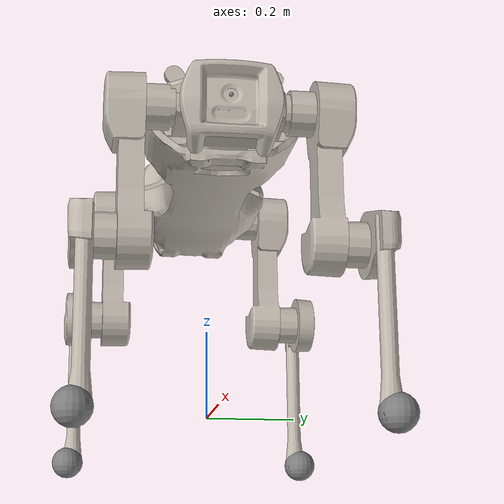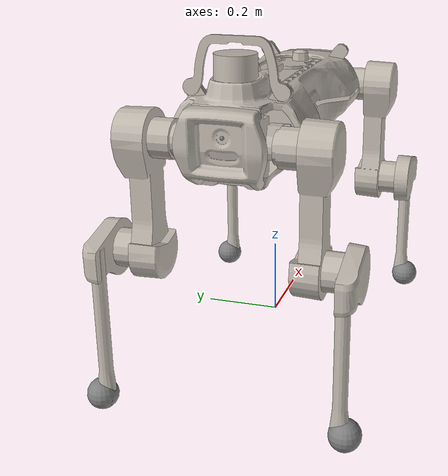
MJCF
<mujoco model="anymal_d">
  <compiler angle="radian" meshdir="assets" texturedir="assets" autolimits="true"/>

  <option cone="elliptic" impratio="100"/>

  <default>
    <default class="anymal_d">
      <geom friction="0.4" margin="0.001" condim="1" mass="0"/>
      <joint damping="0.1" armature="0.01" frictionloss="0.2"/>
      <motor ctrlrange="-80 80"/>
      <default class="visual">
        <geom type="mesh" contype="0" conaffinity="0" group="2" density="0"/>
      </default>
      <default class="collision">
        <geom group="3"/>
        <default class="foot">
          <geom type="sphere" priority="1" condim="6"
            friction="1.0 0.02 0.01"/>
        </default>
      </default>
    </default>
  </default>

  <asset>
    <texture type="2d" name="tex_base" file="base.png"/>
    <texture type="2d" name="tex_top_shell" file="top_shell.png"/>
    <texture type="2d" name="tex_bottom_shell" file="bottom_shell.png"/>
    <texture type="2d" name="tex_face_shell" file="face_shell.png"/>
    <texture type="2d" name="tex_battery" file="battery.png"/>
    <texture type="2d" name="tex_docking_socket" file="docking_socket.png"/>
    <texture type="2d" name="tex_lidar" file="lidar.png"/>
    <texture type="2d" name="tex_lidar_guard" file="lidar_guard.png"/>
    <texture type="2d" name="tex_drive" file="drive.png"/>
    <texture type="2d" name="tex_hip" file="hip.png"/>
    <texture type="2d" name="tex_thigh" file="thigh.png"/>
    <texture type="2d" name="tex_shank" file="shank.png"/>
    <texture type="2d" name="tex_foot" file="foot.png"/>

    <material name="mat_base" texture="tex_base"/>
    <material name="mat_top_shell" texture="tex_top_shell"/>
    <material name="mat_bottom_shell" texture="tex_bottom_shell"/>
    <material name="mat_face_shell" texture="tex_face_shell"/>
    <material name="mat_battery" texture="tex_battery"/>
    <material name="mat_docking_socket" texture="tex_docking_socket"/>
    <material name="mat_lidar" texture="tex_lidar"/>
    <material name="mat_lidar_guard" texture="tex_lidar_guard"/>
    <material name="mat_drive" texture="tex_drive"/>
    <material name="mat_hip" texture="tex_hip"/>
    <material name="mat_thigh" texture="tex_thigh"/>
    <material name="mat_shank" texture="tex_shank"/>
    <material name="mat_foot" texture="tex_foot"/>

    <mesh file="base.obj"/>
    <mesh file="top_shell.obj"/>
    <mesh file="bottom_shell.obj"/>
    <mesh file="face_shell.obj"/>
    <mesh file="battery.obj"/>
    <mesh file="docking_socket.obj"/>
    <mesh file="lidar.obj"/>
    <mesh file="lidar_guard.obj"/>
    <mesh file="drive.obj"/>
    <mesh file="hip.obj"/>
    <mesh file="thigh.obj"/>
    <mesh file="shank_l.obj"/>
    <mesh file="shank_r.obj"/>
    <mesh file="foot.obj"/>
  </asset>

  <worldbody>
    <light name="spotlight" mode="targetbodycom" target="base" pos="0 -1 2" cutoff="30"/>
    <body name="base" pos="0 0 0.594" childclass="anymal_d">
      <freejoint/>
      <inertial mass="26.36305" pos="-0.016448 0.000682 -0.011954"
        quat="0.713650 -0.005053 -0.700480 0.002173"
        diaginertia="1.534412 1.467882 0.251308"/>
      <!-- Base visual -->
      <geom mesh="base" material="mat_base" class="visual"/>
      <geom mesh="top_shell" material="mat_top_shell" class="visual"/>
      <geom mesh="bottom_shell" material="mat_bottom_shell" class="visual"/>
      <geom mesh="face_shell" pos="0.4087 0 0.0205" material="mat_face_shell" class="visual"/>
      <geom mesh="face_shell" pos="-0.4087 0 0.0205" quat="0 0 0 1" material="mat_face_shell" class="visual"/>
      <geom mesh="battery" material="mat_battery" class="visual"/>
      <geom mesh="docking_socket" pos="0.26132 0 -0.06205" material="mat_docking_socket" class="visual"/>
      <geom mesh="lidar" pos="-0.31 0 0.1585" quat="0 0 0 1" material="mat_lidar" class="visual"/>
      <geom mesh="lidar_guard" pos="-0.31 0 0.1585" quat="0 0 0 1" material="mat_lidar_guard" class="visual"/>
      <geom mesh="drive" pos="0.304 0.109 0" material="mat_foot" class="visual"/>
      <geom mesh="drive" pos="0.304 -0.109 0" material="mat_foot" class="visual"/>
      <geom mesh="drive" pos="-0.304 0.109 0" quat="0 0 0 -1" material="mat_foot" class="visual"/>
      <geom mesh="drive" pos="-0.304 -0.109 0" quat="0 0 0 -1" material="mat_foot" class="visual"/>
      <!-- Base collision -->
      <geom size="0.447 0.08075 0.128" pos="0 0 0.016" type="box" class="collision"/>
      <geom size="0.089 0.0741" pos="0.2353 0.08075 0" quat="0.707107 0 0.707107 0" type="cylinder" class="collision"/>
      <geom size="0.089 0.0741" pos="0.2353 -0.08075 0" quat="0.707107 0 0.707107 0" type="cylinder" class="collision"/>
      <geom size="0.089 0.0741" pos="-0.2353 0.08075 0" quat="0.707107 0 0.707107 0" type="cylinder" class="collision"/>
      <geom size="0.089 0.0741" pos="-0.2353 -0.08075 0" quat="0.707107 0 0.707107 0" type="cylinder" class="collision"/>
      <geom size="0.07 0.06775" pos="-0.31 0 0.1585" quat="0 0 0 1" type="cylinder" class="collision"/>
      <site name="imu" pos="0 0 0"/>
      <!-- Camera frames -->
      <site name="depth_camera_front_lower_camera" pos="0.368420 -0.025 -0.060010" quat="0.866025 0 0.5 0"/>
      <site name="depth_camera_front_lower_depth_optical_frame" pos="0.368420 -0.025 -0.060010" quat="0.183013 0.683013 0.683013 0.183013"/>
      <site name="depth_camera_front_upper_camera" pos="0.398770 -0.025 -0.020460" quat="0.991445 0 0.130526 0"/>
      <site name="depth_camera_front_upper_depth_optical_frame" pos="0.398770 -0.025 -0.020460" quat="0.430459 0.560986 0.560986 0.430459"/>
      <site name="depth_camera_rear_lower_camera" pos="-0.368420 0.025 -0.060010" quat="0 -0.5 0 0.866025"/>
      <site name="depth_camera_rear_lower_depth_optical_frame" pos="-0.368420 0.025 -0.060010" quat="0.183013 0.683013 -0.683013 -0.183013"/>
      <site name="depth_camera_rear_upper_camera" pos="-0.398770 0.025 -0.020460" quat="0 -0.130526 0 0.991445"/>
      <site name="depth_camera_rear_upper_depth_optical_frame" pos="-0.398770 0.025 -0.020460" quat="0.430459 0.560986 -0.560986 -0.430459"/>
      <site name="depth_camera_left_camera" pos="-0.025 0.0923 0.0123" quat="0.660141 -0.253404 0.253404 0.660141"/>
      <site name="depth_camera_left_depth_optical_frame" pos="-0.025 0.0923 0.0123" quat="0.406737 -0.913545 0 0"/>
      <site name="depth_camera_right_camera" pos="0.025 -0.0923 0.0123" quat="0.660141 0.253404 0.253404 -0.660141"/>
      <site name="depth_camera_right_depth_optical_frame" pos="0.025 -0.0923 0.0123" quat="0 0 0.913545 -0.406737"/>
      <site name="wide_angle_camera_front_camera" pos="0.4087 0 0.0205"/>
      <site name="wide_angle_camera_front_optical" pos="0.40449 0 0.0205" quat="0.5 -0.5 0.5 -0.5"/>
      <camera name="wide_angle_front" pos="0.40449 0 0.0205" quat="0.500000 0.500000 -0.500000 -0.500000" fovy="120"/>
      <site name="wide_angle_camera_rear_camera" pos="-0.4087 0 0.0205" quat="0 0 0 1"/>
      <site name="wide_angle_camera_rear_optical" pos="-0.40449 0 0.0205" quat="0.5 -0.5 -0.5 0.5"/>
      <camera name="wide_angle_rear" pos="-0.40449 0 0.0205" quat="0.500000 0.500000 0.500000 0.500000" fovy="120"/>
      <camera name="depth_front_upper" pos="0.398770 -0.025 -0.020460" quat="-0.560986 0.430459 0.430459 -0.560986" fovy="87"/>
      <camera name="depth_front_lower" pos="0.368420 -0.025 -0.060010" quat="-0.683013 0.183013 0.183013 -0.683013" fovy="87"/>
      <camera name="depth_rear_upper" pos="-0.398770 0.025 -0.020460" quat="-0.560986 0.430459 -0.430459 0.560986" fovy="87"/>
      <camera name="depth_rear_lower" pos="-0.368420 0.025 -0.060010" quat="-0.683013 0.183013 -0.183013 0.683013" fovy="87"/>
      <camera name="depth_left" pos="-0.025 0.0923 0.0123" quat="0.913545 0.406737 0.000000 0.000000" fovy="87"/>
      <camera name="depth_right" pos="0.025 -0.0923 0.0123" quat="0.000000 0.000000 -0.406737 -0.913545" fovy="87"/>
      <!-- LF leg -->
      <body name="LF_HIP" pos="0.304 0.109 0">
        <inertial pos="0.035047 -0.00122677 0" quat="0.502484 0.502593 0.497424 0.497473" mass="0.36586" diaginertia="0.000558279 0.000443321 0.00023849"/>
        <joint name="LF_HAA" axis="1 0 0" range="-0.785398 0.610865"/>
        <geom mesh="hip" material="mat_hip" class="visual"/>
        <body name="LF_THIGH" pos="0.069 0.006 0" quat="0.707107 0 0 -0.707107">
          <inertial pos="-0.0669974 0.110833 -0.121809" quat="0.847424 0.355343 -0.0696405 0.388271" mass="5.1322" diaginertia="0.141486 0.135483 0.0206892"/>
          <joint name="LF_HFE" axis="-1 0 0" range="-9.42478 9.42478"/>
          <geom mesh="drive" material="mat_drive" class="visual"/>
          <geom mesh="thigh" quat="0.707107 0 0 0.707107" material="mat_thigh" class="visual"/>
          <geom mesh="drive" pos="-0.1805 0 -0.285" quat="0 0 0 1" material="mat_foot" class="visual"/>
          <geom size="0.05375 0.0595" pos="-0.0595 0 0" quat="0.707107 0 0.707107 0" type="cylinder" class="collision"/>
          <geom size="0.07 0.041565" pos="-0.105195 0 0" quat="0.5 0.5 0.5 0.5" type="cylinder" class="collision"/>
          <geom size="0.0465 0.0315 0.1425" pos="-0.09513 0 -0.1425" quat="0.707107 0 0 0.707107" type="box" class="collision"/>
          <geom size="0.07 0.041565" pos="-0.085065 0 -0.285" quat="0.5 0.5 0.5 0.5" type="cylinder" class="collision"/>
          <geom size="0.05375 0.0595" pos="-0.121 0 -0.285" quat="0 -0.707107 0 0.707107" type="cylinder" class="collision"/>
          <body name="LF_SHANK" pos="-0.1805 0 -0.285" quat="0 0 0 1">
            <inertial pos="0.0219778 -0.032671 -0.0911529" quat="0.80705 -0.129258 0.0892927 0.569201" mass="0.79598" diaginertia="0.0192772 0.0192542 0.00249606"/>
            <joint name="LF_KFE" axis="1 0 0" range="-9.42478 9.42478"/>
            <geom mesh="shank_l" quat="0.707107 0 0 -0.707107" material="mat_shank" class="visual"/>
            <geom mesh="foot" pos="0.02225 -0.1 -0.39246" quat="0.707107 0 0 -0.707107" material="mat_foot" class="visual"/>
            <geom size="0.071 0.02866" quat="0.5 0.5 -0.5 -0.5" type="cylinder" class="collision"/>
            <geom size="0.066415 0.04151 0.02866" pos="0 -0.066415 0" quat="0.5 0.5 -0.5 -0.5" type="box" class="collision"/>
            <geom size="0.0175 0.19786" pos="0.00535885 -0.1 -0.164217" quat="0.707107 0 0 -0.707107" type="cylinder" class="collision"/>
            <geom name="LF" class="foot" size="0.031455" pos="0.0141088 -0.1 -0.362077"/>
            <site name="LF_foot_site" pos="0.0141088 -0.1 -0.362077" size="0.04"/>
          </body>
        </body>
      </body>
      <!-- RF leg -->
      <body name="RF_HIP" pos="0.304 -0.109 0">
        <inertial pos="0.035047 0.00122677 0" quat="0.497473 0.497424 0.502593 0.502484" mass="0.36586" diaginertia="0.000558279 0.000443321 0.00023849"/>
        <joint name="RF_HAA" axis="1 0 0" range="-0.610865 0.785398"/>
        <geom mesh="hip" quat="0 -1 0 0" material="mat_foot" class="visual"/>
        <body name="RF_THIGH" pos="0.069 -0.006 0" quat="0.707107 0 0 0.707107">
          <inertial pos="-0.0669974 0.0715537 -0.121809" quat="0.877206 0.44579 0.0354025 0.17472" mass="5.1322" diaginertia="0.18131 0.150268 0.0396147"/>
          <joint name="RF_HFE" axis="1 0 0" range="-9.42478 9.42478"/>
          <geom mesh="drive" material="mat_drive" class="visual"/>
          <geom mesh="thigh" quat="-0.707107 0 0 -0.707107" material="mat_thigh" class="visual"/>
          <geom mesh="drive" pos="-0.1805 0 -0.285" quat="0 0 0 -1" material="mat_foot" class="visual"/>
          <geom size="0.05375 0.0595" pos="-0.0595 0 0" quat="0.707107 0 0.707107 0" type="cylinder" class="collision"/>
          <geom size="0.07 0.041565" pos="-0.105195 0 0" quat="0.5 0.5 -0.5 -0.5" type="cylinder" class="collision"/>
          <geom size="0.0465 0.0315 0.1425" pos="-0.09513 0 -0.1425" quat="0.707107 0 0 -0.707107" type="box" class="collision"/>
          <geom size="0.07 0.041565" pos="-0.085065 0 -0.285" quat="0.5 0.5 -0.5 -0.5" type="cylinder" class="collision"/>
          <geom size="0.05375 0.0595" pos="-0.121 0 -0.285" quat="0 0.707107 0 -0.707107" type="cylinder" class="collision"/>
          <body name="RF_SHANK" pos="-0.1805 0 -0.285" quat="0 0 0 -1">
            <inertial pos="0.0219778 0.032671 -0.0911529" quat="0.569201 0.0892927 -0.129258 0.80705" mass="0.79598" diaginertia="0.0192772 0.0192542 0.00249606"/>
            <joint name="RF_KFE" axis="-1 0 0" range="-9.42478 9.42478"/>
            <geom mesh="shank_r" quat="0.707107 0 0 0.707107" material="mat_shank" class="visual"/>
            <geom mesh="foot" pos="0.02225 0.1 -0.39246" quat="0.707107 0 0 -0.707107" material="mat_foot" class="visual"/>
            <geom size="0.071 0.02866" quat="0.5 0.5 0.5 0.5" type="cylinder" class="collision"/>
            <geom size="0.066415 0.04151 0.02866" pos="0 0.066415 0" quat="0.5 0.5 0.5 0.5" type="box" class="collision"/>
            <geom size="0.0175 0.19786" pos="0.00535885 0.1 -0.164217" quat="0.707107 0 0 0.707107" type="cylinder" class="collision"/>
            <geom name="RF" class="foot" size="0.031455" pos="0.0141088 0.1 -0.362077"/>
            <site name="RF_foot_site" pos="0.0141088 0.1 -0.362077" size="0.04"/>
          </body>
        </body>
      </body>
      <!-- LH leg -->
      <body name="LH_HIP" pos="-0.304 0.109 0" quat="0 0 0 -1">
        <inertial pos="-0.0346698 -0.00125957 0" quat="0.497686 0.497737 0.502224 0.502332" mass="0.36586" diaginertia="0.000567894 0.000452912 0.000238466"/>
        <joint name="LH_HAA" axis="-1 0 0" range="-0.785398 0.610865"/>
        <geom mesh="hip" quat="0 1 0 0" material="mat_foot" class="visual"/>
        <body name="LH_THIGH" pos="0.069 -0.006 0" quat="-0.707107 0 0 -0.707107">
          <inertial pos="-0.0668215 0.110833 -0.121809" quat="0.848941 0.356939 -0.0647204 0.384323" mass="5.1322" diaginertia="0.141716 0.135634 0.0205503"/>
          <joint name="LH_HFE" axis="-1 0 0" range="-9.42478 9.42478"/>
          <geom mesh="drive" material="mat_drive" class="visual"/>
          <geom mesh="thigh" quat="0.707107 0 0 0.707107" material="mat_thigh" class="visual"/>
          <geom mesh="drive" pos="-0.1805 0 -0.285" quat="0 0 0 1" material="mat_foot" class="visual"/>
          <geom size="0.05375 0.0595" pos="-0.0595 0 0" quat="0.707107 0 0.707107 0" type="cylinder" class="collision"/>
          <geom size="0.07 0.041565" pos="-0.105195 0 0" quat="0.5 0.5 0.5 0.5" type="cylinder" class="collision"/>
          <geom size="0.0465 0.0315 0.1425" pos="-0.09513 0 -0.1425" quat="0.707107 0 0 0.707107" type="box" class="collision"/>
          <geom size="0.07 0.041565" pos="-0.085065 0 -0.285" quat="0.5 0.5 0.5 0.5" type="cylinder" class="collision"/>
          <geom size="0.05375 0.0595" pos="-0.121 0 -0.285" quat="0 -0.707107 0 0.707107" type="cylinder" class="collision"/>
          <body name="LH_SHANK" pos="-0.1805 0 -0.285" quat="0 0 0 1">
            <inertial pos="-0.00540503 0.0417739 -0.0887313" quat="0.576666 0.0236612 -0.146695 0.803354" mass="0.79598" diaginertia="0.0186219 0.0179968 0.00220746"/>
            <joint name="LH_KFE" axis="1 0 0" range="-9.42478 9.42478"/>
            <geom mesh="shank_r" quat="-0.707107 0 0 -0.707107" material="mat_shank" class="visual"/>
            <geom mesh="foot" pos="0.02225 0.1 -0.39246" quat="0.707107 0 0 -0.707107" material="mat_foot" class="visual"/>
            <geom size="0.071 0.02866" quat="0.5 0.5 -0.5 -0.5" type="cylinder" class="collision"/>
            <geom size="0.066415 0.04151 0.02866" pos="0 0.066415 0" quat="0.5 0.5 -0.5 -0.5" type="box" class="collision"/>
            <geom size="0.0175 0.19786" pos="0.00535885 0.1 -0.164217" quat="0.707107 0 0 -0.707107" type="cylinder" class="collision"/>
            <geom name="LH" class="foot" size="0.031455" pos="0.0141088 0.1 -0.362077"/>
            <site name="LH_foot_site" pos="0.0141088 0.1 -0.362077" size="0.04"/>
          </body>
        </body>
      </body>
      <!-- RH leg -->
      <body name="RH_HIP" pos="-0.304 -0.109 0" quat="0 0 0 -1">
        <inertial pos="-0.0346698 0.00125957 0" quat="0.502332 0.502224 0.497737 0.497686" mass="0.36586" diaginertia="0.000567894 0.000452912 0.000238466"/>
        <joint name="RH_HAA" axis="-1 0 0" range="-0.610865 0.785398"/>
        <geom mesh="hip" quat="-1 0 0 0" material="mat_foot" class="visual"/>
        <body name="RH_THIGH" pos="0.069 0.006 0" quat="0.707107 0 0 -0.707107">
          <inertial pos="-0.0668215 0.0715537 -0.121809" quat="0.879005 0.444872 0.0396475 0.166936" mass="5.1322" diaginertia="0.180979 0.150741 0.0397139"/>
          <joint name="RH_HFE" axis="1 0 0" range="-9.42478 9.42478"/>
          <geom mesh="drive" material="mat_drive" class="visual"/>
          <geom mesh="thigh" quat="-0.707107 0 0 -0.707107" material="mat_thigh" class="visual"/>
          <geom mesh="drive" pos="-0.1805 0 -0.285" quat="0 0 0 -1" material="mat_foot" class="visual"/>
          <geom size="0.05375 0.0595" pos="-0.0595 0 0" quat="0.707107 0 0.707107 0" type="cylinder" class="collision"/>
          <geom size="0.07 0.041565" pos="-0.105195 0 0" quat="0.5 0.5 -0.5 -0.5" type="cylinder" class="collision"/>
          <geom size="0.0465 0.0315 0.1425" pos="-0.09513 0 -0.1425" quat="0.707107 0 0 -0.707107" type="box" class="collision"/>
          <geom size="0.07 0.041565" pos="-0.085065 0 -0.285" quat="0.5 0.5 -0.5 -0.5" type="cylinder" class="collision"/>
          <geom size="0.05375 0.0595" pos="-0.121 0 -0.285" quat="0 0.707107 0 -0.707107" type="cylinder" class="collision"/>
          <body name="RH_SHANK" pos="-0.1805 0 -0.285" quat="0 0 0 -1">
            <inertial pos="-0.00540503 -0.0417739 -0.0887313" quat="0.803354 -0.146695 0.0236612 0.576666" mass="0.79598" diaginertia="0.0186219 0.0179968 0.00220746"/>
            <joint name="RH_KFE" axis="-1 0 0" range="-9.42478 9.42478"/>
            <geom mesh="shank_l" quat="0.707107 0 0 -0.707107" material="mat_shank" class="visual"/>
            <geom mesh="foot" pos="0.02225 -0.1 -0.39246" quat="0.707107 0 0 -0.707107" material="mat_foot" class="visual"/>
            <geom size="0.071 0.02866" quat="0.5 0.5 0.5 0.5" type="cylinder" class="collision"/>
            <geom size="0.066415 0.04151 0.02866" pos="0 -0.066415 0" quat="0.5 0.5 0.5 0.5" type="box" class="collision"/>
            <geom size="0.0175 0.19786" pos="0.00535885 -0.1 -0.164217" quat="0.707107 0 0 0.707107" type="cylinder" class="collision"/>
            <geom name="RH" class="foot" size="0.031455" pos="0.0141088 -0.1 -0.362077"/>
            <site name="RH_foot_site" pos="0.0141088 -0.1 -0.362077" size="0.04"/>
          </body>
        </body>
      </body>
    </body>
  </worldbody>

  <contact>
    <exclude body1="base" body2="LF_THIGH"/>
    <exclude body1="base" body2="RF_THIGH"/>
    <exclude body1="base" body2="LH_THIGH"/>
    <exclude body1="base" body2="RH_THIGH"/>
  </contact>

  <actuator>
    <motor class="anymal_d" name="LF_HAA" joint="LF_HAA"/>
    <motor class="anymal_d" name="LF_HFE" joint="LF_HFE"/>
    <motor class="anymal_d" name="LF_KFE" joint="LF_KFE"/>
    <motor class="anymal_d" name="RF_HAA" joint="RF_HAA"/>
    <motor class="anymal_d" name="RF_HFE" joint="RF_HFE"/>
    <motor class="anymal_d" name="RF_KFE" joint="RF_KFE"/>
    <motor class="anymal_d" name="LH_HAA" joint="LH_HAA"/>
    <motor class="anymal_d" name="LH_HFE" joint="LH_HFE"/>
    <motor class="anymal_d" name="LH_KFE" joint="LH_KFE"/>
    <motor class="anymal_d" name="RH_HAA" joint="RH_HAA"/>
    <motor class="anymal_d" name="RH_HFE" joint="RH_HFE"/>
    <motor class="anymal_d" name="RH_KFE" joint="RH_KFE"/>
  </actuator>

  <sensor>
    <jointpos name="LF_HAA_pos" joint="LF_HAA"/>
    <jointpos name="LF_HFE_pos" joint="LF_HFE"/>
    <jointpos name="LF_KFE_pos" joint="LF_KFE"/>
    <jointpos name="RF_HAA_pos" joint="RF_HAA"/>
    <jointpos name="RF_HFE_pos" joint="RF_HFE"/>
    <jointpos name="RF_KFE_pos" joint="RF_KFE"/>
    <jointpos name="LH_HAA_pos" joint="LH_HAA"/>
    <jointpos name="LH_HFE_pos" joint="LH_HFE"/>
    <jointpos name="LH_KFE_pos" joint="LH_KFE"/>
    <jointpos name="RH_HAA_pos" joint="RH_HAA"/>
    <jointpos name="RH_HFE_pos" joint="RH_HFE"/>
    <jointpos name="RH_KFE_pos" joint="RH_KFE"/>

    <jointvel name="LF_HAA_vel" joint="LF_HAA"/>
    <jointvel name="LF_HFE_vel" joint="LF_HFE"/>
    <jointvel name="LF_KFE_vel" joint="LF_KFE"/>
    <jointvel name="RF_HAA_vel" joint="RF_HAA"/>
    <jointvel name="RF_HFE_vel" joint="RF_HFE"/>
    <jointvel name="RF_KFE_vel" joint="RF_KFE"/>
    <jointvel name="LH_HAA_vel" joint="LH_HAA"/>
    <jointvel name="LH_HFE_vel" joint="LH_HFE"/>
    <jointvel name="LH_KFE_vel" joint="LH_KFE"/>
    <jointvel name="RH_HAA_vel" joint="RH_HAA"/>
    <jointvel name="RH_HFE_vel" joint="RH_HFE"/>
    <jointvel name="RH_KFE_vel" joint="RH_KFE"/>

    <jointactuatorfrc name="LF_HAA_torque" joint="LF_HAA" noise="0.01"/>
    <jointactuatorfrc name="LF_HFE_torque" joint="LF_HFE" noise="0.01"/>
    <jointactuatorfrc name="LF_KFE_torque" joint="LF_KFE" noise="0.01"/>
    <jointactuatorfrc name="RF_HAA_torque" joint="RF_HAA" noise="0.01"/>
    <jointactuatorfrc name="RF_HFE_torque" joint="RF_HFE" noise="0.01"/>
    <jointactuatorfrc name="RF_KFE_torque" joint="RF_KFE" noise="0.01"/>
    <jointactuatorfrc name="LH_HAA_torque" joint="LH_HAA" noise="0.01"/>
    <jointactuatorfrc name="LH_HFE_torque" joint="LH_HFE" noise="0.01"/>
    <jointactuatorfrc name="LH_KFE_torque" joint="LH_KFE" noise="0.01"/>
    <jointactuatorfrc name="RH_HAA_torque" joint="RH_HAA" noise="0.01"/>
    <jointactuatorfrc name="RH_HFE_torque" joint="RH_HFE" noise="0.01"/>
    <jointactuatorfrc name="RH_KFE_torque" joint="RH_KFE" noise="0.01"/>

    <framequat name="imu_quat" objtype="site" objname="imu"/>
    <gyro name="imu_gyro" site="imu"/>
    <accelerometer name="imu_acc" site="imu"/>

    <framepos name="frame_pos" objtype="site" objname="imu"/>
    <framelinvel name="frame_vel" objtype="site" objname="imu"/>

    <touch name="FR_foot_force" site="RF_foot_site"/>
    <touch name="FL_foot_force" site="LF_foot_site"/>
    <touch name="RR_foot_force" site="RH_foot_site"/>
    <touch name="RL_foot_force" site="LH_foot_site"/>
  </sensor>

  <keyframe>
    <key name="stand" qpos="0 0 0.594 1 0 0 0 0.03 0.4 -0.8 -0.03 0.4 -0.8 -0.03 -0.4 0.8 0.03 -0.4 0.8"
      ctrl="0.03 0.4 -0.8 -0.03 0.4 -0.8 -0.03 -0.4 0.8 0.03 -0.4 0.8" />
    <key name="sit" qpos="0 0 0.32 1 0 0 0 0.03 0.8 -1.5 -0.03 0.8 -1.5 -0.03 -0.8 1.5 0.03 -0.8 1.5"
      ctrl="0.03 0.8 -1.5 -0.03 0.8 -1.5 -0.03 -0.8 1.5 0.03 -0.8 1.5" />
  </keyframe>
</mujoco>
